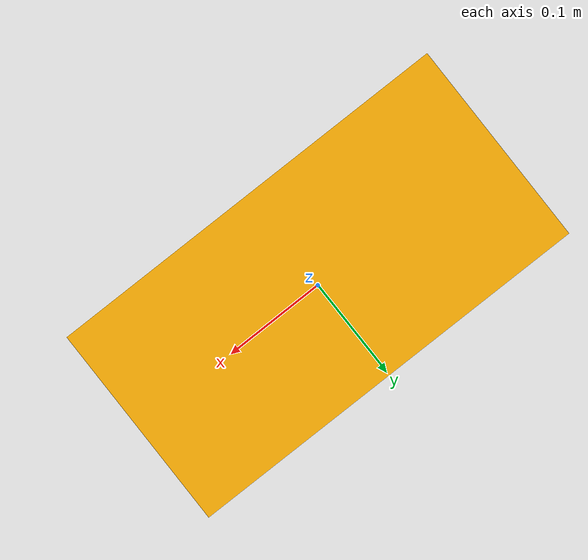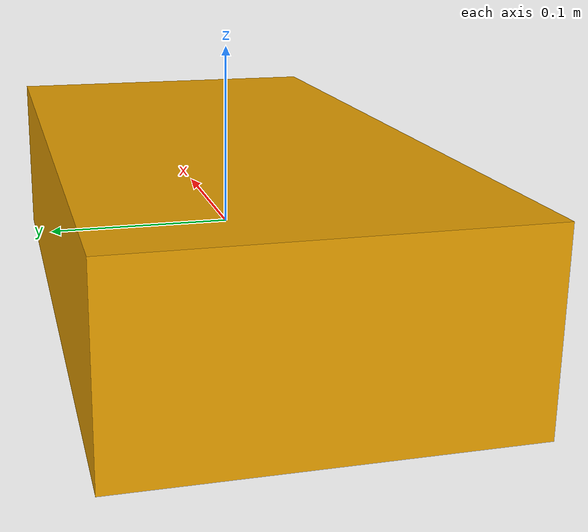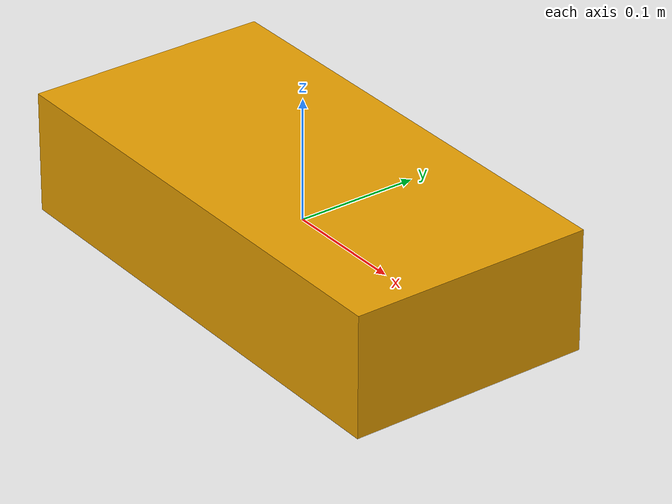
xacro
<?xml version='1.0'?>
<robot name="bot" xmlns:xacro="http://www.ros.org/wiki/xacro">
  <xacro:arg name="veh" default="$(arg veh)"/>

  <link name="base_link">
          <pose>0 0 .1 0 0 0</pose>
          <collision name="collision">
            <geometry>
              <box size=".4 .2 .1"/>
            </geometry>
          </collision>

          <visual name="visual">
            <geometry>
              <box size=".4 .2 .1"/>
            </geometry>
          </visual>

          <collision name="caster_collision">
            <pose>-0.15 0 -0.05 0 0 0</pose>
            <geometry>
              <sphere radius=".05"/>
          </geometry>

          <surface>
            <friction>
              <ode>
                <mu>0</mu>
                <mu2>0</mu2>
                <slip1>1.0</slip1>
                <slip2>1.0</slip2>
              </ode>
            </friction>
          </surface>
        </collision>

        <visual name="caster_visual">
          <pose>-0.15 0 -0.05 0 0 0</pose>
          <geometry>
            <sphere radius=".05"/>
          </geometry>
        </visual>
  </link>
      <link name="left_wheel">
        <pose>0.1 0.13 0.1 0 1.5707 1.5707</pose>
        <collision name="collision">
          <geometry>
            <cylinder radius=".1" length=".05"/>
          </geometry>
        </collision>
        <visual name="visual">
          <geometry>
            <cylinder radius=".1" length=".05"/>
          </geometry>
        </visual>
      </link>

      <link name="right_wheel">
        <pose>0.1 -0.13 0.1 0 1.5707 1.5707</pose>
        <collision name="collision">
          <geometry>
            <cylinder radius=".1" length=".05"/>
          </geometry>
        </collision>
        <visual name="visual">
          <geometry>
            <cylinder radius=".1" length=".05"/>
          </geometry>
        </visual>
      </link>
      <joint type="revolute" name="left_wheel_hinge">
        <pose>0 0 -0.03 0 0 0</pose>
        <child link="left_wheel"/>
        <parent link="base_link"/>
        <limit upper="6.28" lower="-6.28" effort="1000" velocity="1000.00"/>
        <axis>
          <xyz>0 1 0</xyz>
        </axis>
      </joint>

      <joint type="revolute" name="right_wheel_hinge">
        <pose>0 0 0.03 0 0 0</pose>
        <child link="right_wheel"/>
        <parent link="base_link"/>
        <limit upper="6.28" lower="-6.28" effort="1000" velocity="1000.00"/>
        <axis>
          <xyz>0 1 0</xyz>
        </axis>
      </joint>
</robot>
